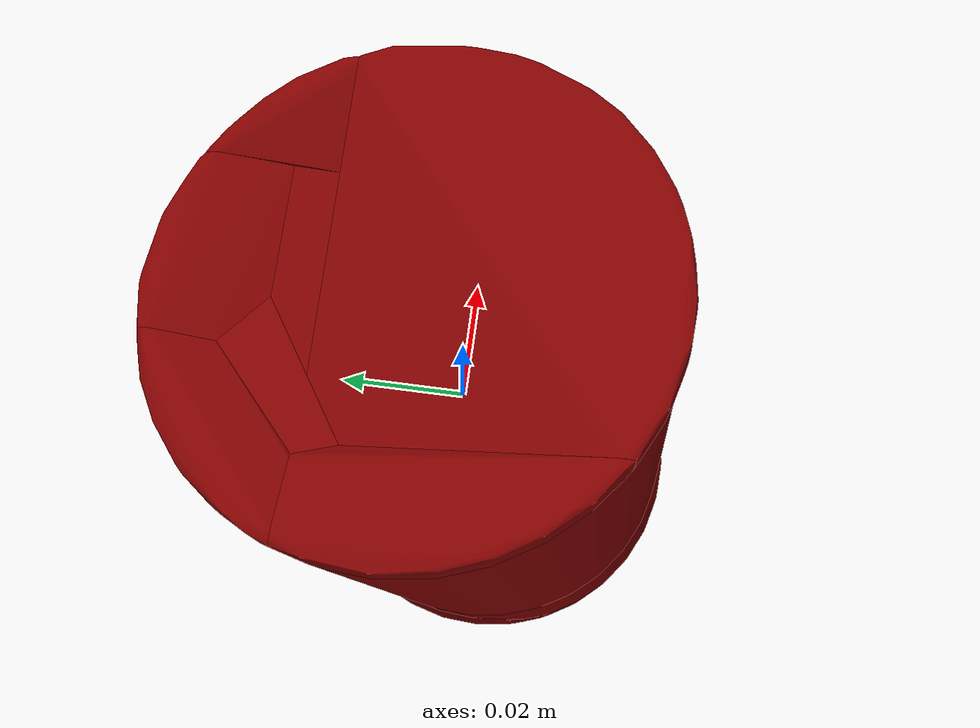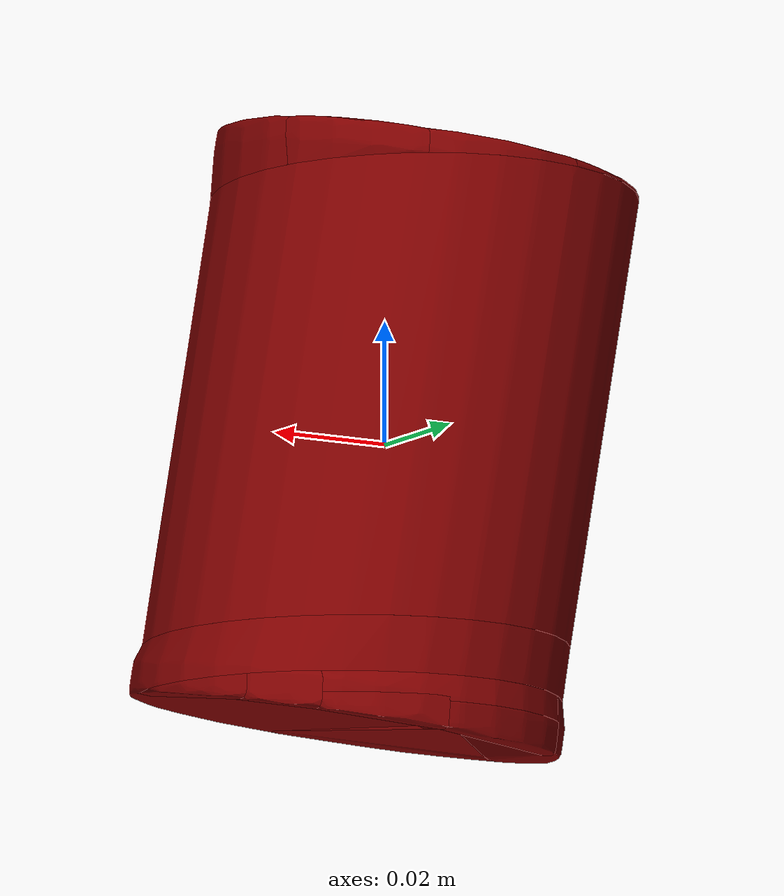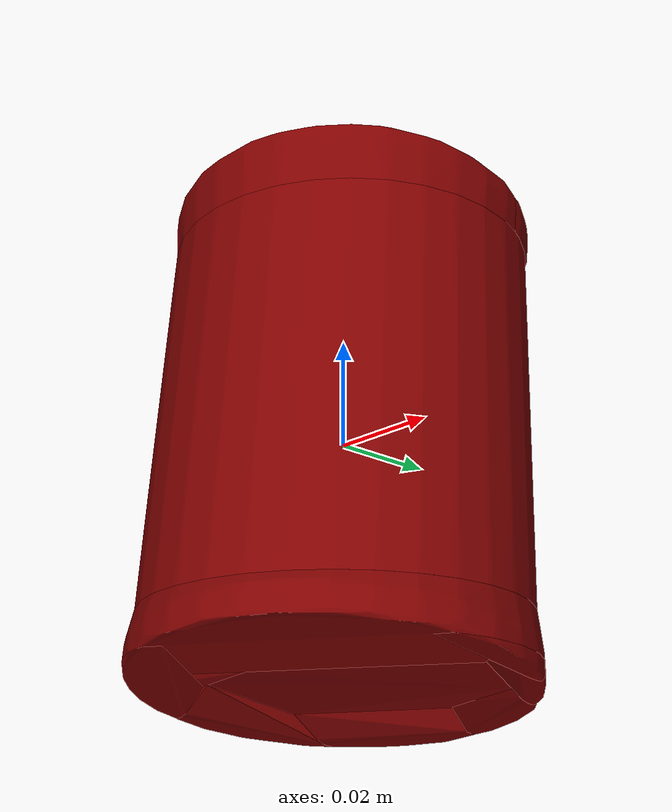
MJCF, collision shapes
<mujoco model="more_canned_food_7">
  <asset>
    <mesh file="visual/model_normalized_0.obj" name="model_normalized_0_vis" scale="0.09999999999999998 0.09999999999999998 0.09999999999999998" refquat="1.0 0.0 0.0 0.0"/>
    <texture type="2d" name="image0" file="visual/image0.png"/>
    <material name="Material.015" texture="image0" specular="0.5" shininess="0.030996522"/>
    <mesh file="collision/collision_mesh_collision_0.obj" name="canned_collision_mesh_0" scale="0.09999999999999998 0.09999999999999998 0.09999999999999998" refquat="1.0 0.0 0.0 0.0"/>
    <mesh file="collision/collision_mesh_collision_1.obj" name="canned_collision_mesh_1" scale="0.09999999999999998 0.09999999999999998 0.09999999999999998" refquat="1.0 0.0 0.0 0.0"/>
    <mesh file="collision/collision_mesh_collision_2.obj" name="canned_collision_mesh_2" scale="0.09999999999999998 0.09999999999999998 0.09999999999999998" refquat="1.0 0.0 0.0 0.0"/>
    <mesh file="collision/collision_mesh_collision_3.obj" name="canned_collision_mesh_3" scale="0.09999999999999998 0.09999999999999998 0.09999999999999998" refquat="1.0 0.0 0.0 0.0"/>
    <mesh file="collision/collision_mesh_collision_4.obj" name="canned_collision_mesh_4" scale="0.09999999999999998 0.09999999999999998 0.09999999999999998" refquat="1.0 0.0 0.0 0.0"/>
    <mesh file="collision/collision_mesh_collision_5.obj" name="canned_collision_mesh_5" scale="0.09999999999999998 0.09999999999999998 0.09999999999999998" refquat="1.0 0.0 0.0 0.0"/>
    <mesh file="collision/collision_mesh_collision_6.obj" name="canned_collision_mesh_6" scale="0.09999999999999998 0.09999999999999998 0.09999999999999998" refquat="1.0 0.0 0.0 0.0"/>
    <mesh file="collision/collision_mesh_collision_7.obj" name="canned_collision_mesh_7" scale="0.09999999999999998 0.09999999999999998 0.09999999999999998" refquat="1.0 0.0 0.0 0.0"/>
    <mesh file="collision/collision_mesh_collision_8.obj" name="canned_collision_mesh_8" scale="0.09999999999999998 0.09999999999999998 0.09999999999999998" refquat="1.0 0.0 0.0 0.0"/>
    <mesh file="collision/collision_mesh_collision_9.obj" name="canned_collision_mesh_9" scale="0.09999999999999998 0.09999999999999998 0.09999999999999998" refquat="1.0 0.0 0.0 0.0"/>
    <mesh file="collision/collision_mesh_collision_10.obj" name="canned_collision_mesh_10" scale="0.09999999999999998 0.09999999999999998 0.09999999999999998" refquat="1.0 0.0 0.0 0.0"/>
    <mesh file="collision/collision_mesh_collision_11.obj" name="canned_collision_mesh_11" scale="0.09999999999999998 0.09999999999999998 0.09999999999999998" refquat="1.0 0.0 0.0 0.0"/>
    <mesh file="collision/collision_mesh_collision_12.obj" name="canned_collision_mesh_12" scale="0.09999999999999998 0.09999999999999998 0.09999999999999998" refquat="1.0 0.0 0.0 0.0"/>
    <mesh file="collision/collision_mesh_collision_13.obj" name="canned_collision_mesh_13" scale="0.09999999999999998 0.09999999999999998 0.09999999999999998" refquat="1.0 0.0 0.0 0.0"/>
    <mesh file="collision/collision_mesh_collision_14.obj" name="canned_collision_mesh_14" scale="0.09999999999999998 0.09999999999999998 0.09999999999999998" refquat="1.0 0.0 0.0 0.0"/>
    <mesh file="collision/collision_mesh_collision_15.obj" name="canned_collision_mesh_15" scale="0.09999999999999998 0.09999999999999998 0.09999999999999998" refquat="1.0 0.0 0.0 0.0"/>
  </asset>
  <default>
    <default class="region">
      <geom group="1" conaffinity="0" contype="0" rgba="0 1 0 0"/>
    </default>
    <default class="collision">
      <geom group="0" rgba="0.5 0 0 0.5" density="1000.0"/>
    </default>
  </default>
  <worldbody>
    <body>
      <body name="object">
        <geom solimp="0.998 0.998 0.001" solref="0.001 1" density="100" friction="0.95 0.3 0.1" type="mesh" mesh="model_normalized_0_vis" conaffinity="0" contype="0" group="1" material="Material.015"/>
        <geom class="region" name="reg_bbox" type="box" pos="4.649000000001012e-06 7.695000000002004e-06 7.751500000002795e-06" size="0.038128369999999995 0.04006322899999999 0.05040421749999998"/>
        <geom mesh="canned_collision_mesh_0" type="mesh" class="collision"/>
        <geom mesh="canned_collision_mesh_1" type="mesh" class="collision"/>
        <geom mesh="canned_collision_mesh_2" type="mesh" class="collision"/>
        <geom mesh="canned_collision_mesh_3" type="mesh" class="collision"/>
        <geom mesh="canned_collision_mesh_4" type="mesh" class="collision"/>
        <geom mesh="canned_collision_mesh_5" type="mesh" class="collision"/>
        <geom mesh="canned_collision_mesh_6" type="mesh" class="collision"/>
        <geom mesh="canned_collision_mesh_7" type="mesh" class="collision"/>
        <geom mesh="canned_collision_mesh_8" type="mesh" class="collision"/>
        <geom mesh="canned_collision_mesh_9" type="mesh" class="collision"/>
        <geom mesh="canned_collision_mesh_10" type="mesh" class="collision"/>
        <geom mesh="canned_collision_mesh_11" type="mesh" class="collision"/>
        <geom mesh="canned_collision_mesh_12" type="mesh" class="collision"/>
        <geom mesh="canned_collision_mesh_13" type="mesh" class="collision"/>
        <geom mesh="canned_collision_mesh_14" type="mesh" class="collision"/>
        <geom mesh="canned_collision_mesh_15" type="mesh" class="collision"/>
      </body>
    </body>
  </worldbody>
</mujoco>
